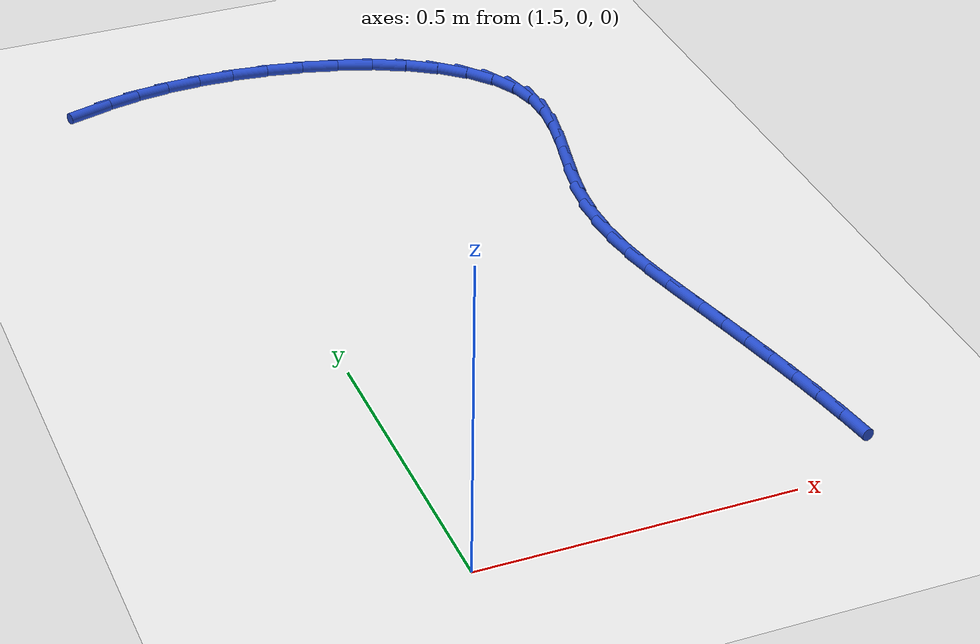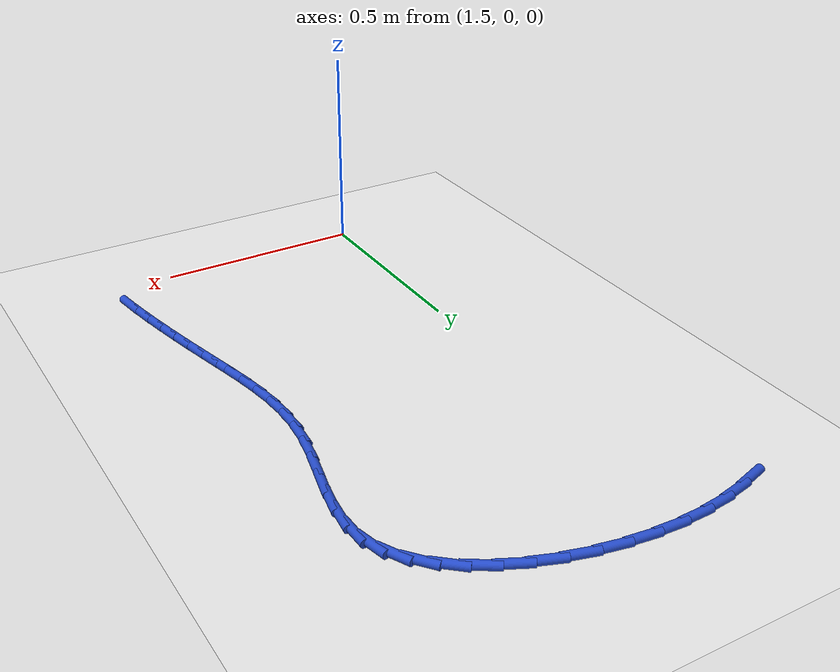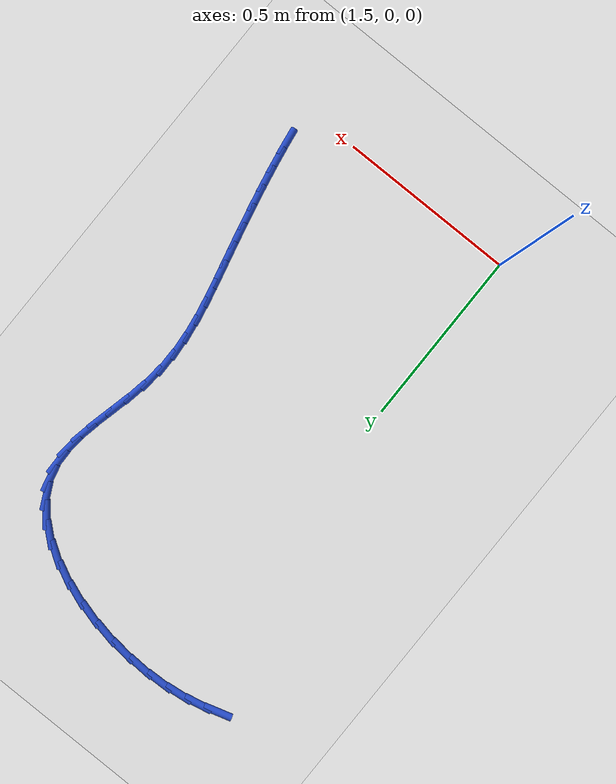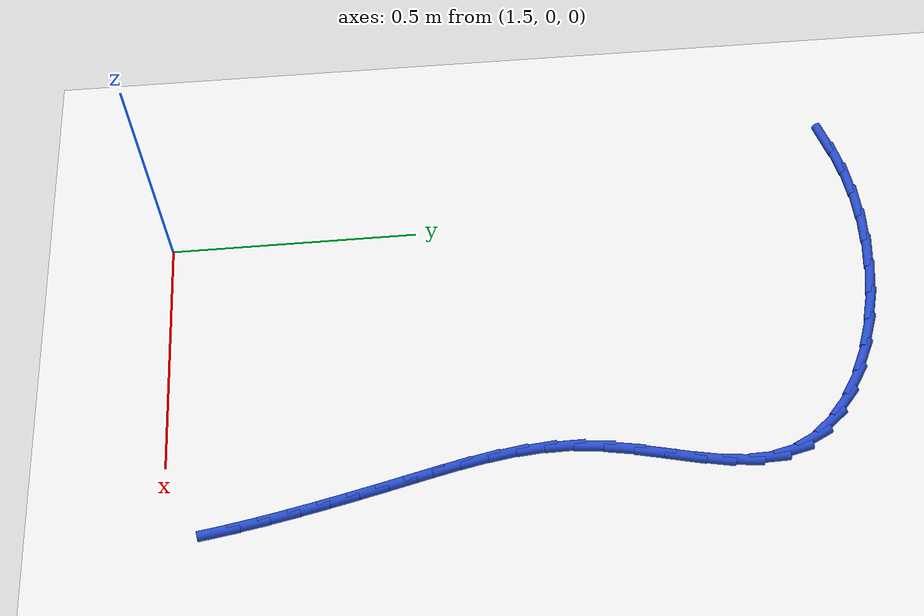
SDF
<sdf version="1.6">
 <world name="default">
  <model name="ground_plane">
   <static>1</static>
   <link name="link">
    <collision name="collision">
     <geometry><plane><normal>0 0 1</normal><size>100 100</size></plane></geometry>
     <surface><friction><ode><mu>100</mu><mu2>50</mu2></ode></friction></surface>
    </collision>
    <visual name="visual">
     <cast_shadows>0</cast_shadows>
     <geometry><plane><normal>0 0 1</normal><size>100 100</size></plane></geometry>
     <material>
      <script><uri>file://media/materials/scripts/gazebo.material</uri><name>Gazebo/WhiteGlow</name></script>
     </material>
    </visual>
   </link>
  </model>
  <model name="line">
   <link name="link_37">
    <pose>1.3368166220188906 1.3895947322920867 0.01 0 1.57 0.2828429320358755</pose>
    <collision name="collision">
     <geometry><cylinder><radius>0.01</radius><length>0.08</length></cylinder></geometry>
    </collision>
    <visual name="visual">
     <material>
      <script><name>Gazebo/Blue</name><uri>file://media/materials/scripts/gazebo.material</uri></script>
     </material>
     <geometry><cylinder><radius>0.01</radius><length>0.08</length></cylinder></geometry>
    </visual>
   </link>
   <link name="link_38">
    <pose>1.3908448251860674 1.4052972115189075 0.01 0 1.57 0.19849986727554278</pose>
    <collision name="collision">
     <geometry><cylinder><radius>0.01</radius><length>0.08</length></cylinder></geometry>
    </collision>
    <visual name="visual">
     <material>
      <script><name>Gazebo/Blue</name><uri>file://media/materials/scripts/gazebo.material</uri></script>
     </material>
     <geometry><cylinder><radius>0.01</radius><length>0.08</length></cylinder></geometry>
    </visual>
   </link>
   <link name="link_39">
    <pose>1.4475605045876268 1.4167054986228504 0.01 0 1.57 0.1108463671033673</pose>
    <collision name="collision">
     <geometry><cylinder><radius>0.01</radius><length>0.08</length></cylinder></geometry>
    </collision>
    <visual name="visual">
     <material>
      <script><name>Gazebo/Blue</name><uri>file://media/materials/scripts/gazebo.material</uri></script>
     </material>
     <geometry><cylinder><radius>0.01</radius><length>0.08</length></cylinder></geometry>
    </visual>
   </link>
   <link name="link_40">
    <pose>1.5072309692489756 1.4233469762562436 0.01 0 1.57 0.0261838454709441</pose>
    <collision name="collision">
     <geometry><cylinder><radius>0.01</radius><length>0.08</length></cylinder></geometry>
    </collision>
    <visual name="visual">
     <material>
      <script><name>Gazebo/Blue</name><uri>file://media/materials/scripts/gazebo.material</uri></script>
     </material>
     <geometry><cylinder><radius>0.01</radius><length>0.08</length></cylinder></geometry>
    </visual>
   </link>
   <link name="link_41">
    <pose>1.5695284566508951 1.424978536919252 0.01 0 1.57 -0.05167879565938909</pose>
    <collision name="collision">
     <geometry><cylinder><radius>0.01</radius><length>0.08</length></cylinder></geometry>
    </collision>
    <visual name="visual">
     <material>
      <script><name>Gazebo/Blue</name><uri>file://media/materials/scripts/gazebo.material</uri></script>
     </material>
     <geometry><cylinder><radius>0.01</radius><length>0.08</length></cylinder></geometry>
    </visual>
   </link>
   <link name="link_42">
    <pose>1.633286160712012 1.421680679175907 0.01 0 1.57 -0.12626106900351702</pose>
    <collision name="collision">
     <geometry><cylinder><radius>0.01</radius><length>0.08</length></cylinder></geometry>
    </collision>
    <visual name="visual">
     <material>
      <script><name>Gazebo/Blue</name><uri>file://media/materials/scripts/gazebo.material</uri></script>
     </material>
     <geometry><cylinder><radius>0.01</radius><length>0.08</length></cylinder></geometry>
    </visual>
   </link>
   <link name="link_43">
    <pose>1.6972740294257007 1.413558294560819 0.01 0 1.57 -0.20112399219696214</pose>
    <collision name="collision">
     <geometry><cylinder><radius>0.01</radius><length>0.08</length></cylinder></geometry>
    </collision>
    <visual name="visual">
     <material>
      <script><name>Gazebo/Blue</name><uri>file://media/materials/scripts/gazebo.material</uri></script>
     </material>
     <geometry><cylinder><radius>0.01</radius><length>0.08</length></cylinder></geometry>
    </visual>
   </link>
   <link name="link_44">
    <pose>1.7602620107853362 1.400716274608599 0.01 0 1.57 -0.27977995549784024</pose>
    <collision name="collision">
     <geometry><cylinder><radius>0.01</radius><length>0.08</length></cylinder></geometry>
    </collision>
    <visual name="visual">
     <material>
      <script><name>Gazebo/Blue</name><uri>file://media/materials/scripts/gazebo.material</uri></script>
     </material>
     <geometry><cylinder><radius>0.01</radius><length>0.08</length></cylinder></geometry>
    </visual>
   </link>
   <link name="link_45">
    <pose>1.821020052784292 1.3832595108538595 0.01 0 1.57 -0.36609247645813225</pose>
    <collision name="collision">
     <geometry><cylinder><radius>0.01</radius><length>0.08</length></cylinder></geometry>
    </collision>
    <visual name="visual">
     <material>
      <script><name>Gazebo/Blue</name><uri>file://media/materials/scripts/gazebo.material</uri></script>
     </material>
     <geometry><cylinder><radius>0.01</radius><length>0.08</length></cylinder></geometry>
    </visual>
   </link>
   <link name="link_46">
    <pose>1.8783181034159422 1.3612928948312102 0.01 0 1.57 -0.46467465270113656</pose>
    <collision name="collision">
     <geometry><cylinder><radius>0.01</radius><length>0.08</length></cylinder></geometry>
    </collision>
    <visual name="visual">
     <material>
      <script><name>Gazebo/Blue</name><uri>file://media/materials/scripts/gazebo.material</uri></script>
     </material>
     <geometry><cylinder><radius>0.01</radius><length>0.08</length></cylinder></geometry>
    </visual>
   </link>
   <link name="link_47">
    <pose>1.9309261106736613 1.334921318075263 0.01 0 1.57 -0.5812458126008342</pose>
    <collision name="collision">
     <geometry><cylinder><radius>0.01</radius><length>0.08</length></cylinder></geometry>
    </collision>
    <visual name="visual">
     <material>
      <script><name>Gazebo/Blue</name><uri>file://media/materials/scripts/gazebo.material</uri></script>
     </material>
     <geometry><cylinder><radius>0.01</radius><length>0.08</length></cylinder></geometry>
    </visual>
   </link>
   <link name="link_48">
    <pose>1.9776140225508234 1.304249672120629 0.01 0 1.57 -0.7227028463644833</pose>
    <collision name="collision">
     <geometry><cylinder><radius>0.01</radius><length>0.08</length></cylinder></geometry>
    </collision>
    <visual name="visual">
     <material>
      <script><name>Gazebo/Blue</name><uri>file://media/materials/scripts/gazebo.material</uri></script>
     </material>
     <geometry><cylinder><radius>0.01</radius><length>0.08</length></cylinder></geometry>
    </visual>
   </link>
   <link name="link_49">
    <pose>2.017151787040802 1.2693828485019187 0.01 0 1.57 -0.8961825339185785</pose>
    <collision name="collision">
     <geometry><cylinder><radius>0.01</radius><length>0.08</length></cylinder></geometry>
    </collision>
    <visual name="visual">
     <material>
      <script><name>Gazebo/Blue</name><uri>file://media/materials/scripts/gazebo.material</uri></script>
     </material>
     <geometry><cylinder><radius>0.01</radius><length>0.08</length></cylinder></geometry>
    </visual>
   </link>
   <link name="link_50">
    <pose>2.0483093521369726 1.230425738753744 0.01 0 1.57 -1.1057327291660544</pose>
    <collision name="collision">
     <geometry><cylinder><radius>0.01</radius><length>0.08</length></cylinder></geometry>
    </collision>
    <visual name="visual">
     <material>
      <script><name>Gazebo/Blue</name><uri>file://media/materials/scripts/gazebo.material</uri></script>
     </material>
     <geometry><cylinder><radius>0.01</radius><length>0.08</length></cylinder></geometry>
    </visual>
   </link>
   <link name="link_51">
    <pose>2.0698566658327096 1.1874832344107165 0.01 0 1.57 -1.3435146574158854</pose>
    <collision name="collision">
     <geometry><cylinder><radius>0.01</radius><length>0.08</length></cylinder></geometry>
    </collision>
    <visual name="visual">
     <material>
      <script><name>Gazebo/Blue</name><uri>file://media/materials/scripts/gazebo.material</uri></script>
     </material>
     <geometry><cylinder><radius>0.01</radius><length>0.08</length></cylinder></geometry>
    </visual>
   </link>
   <link name="link_52">
    <pose>2.0806813681542025 1.1406793417318133 0.01 0 1.57 -1.5513893565116859</pose>
    <collision name="collision">
     <geometry><cylinder><radius>0.01</radius><length>0.08</length></cylinder></geometry>
    </collision>
    <visual name="visual">
     <material>
      <script><name>Gazebo/Blue</name><uri>file://media/materials/scripts/gazebo.material</uri></script>
     </material>
     <geometry><cylinder><radius>0.01</radius><length>0.08</length></cylinder></geometry>
    </visual>
   </link>
   <link name="link_53">
    <pose>2.081656086970403 1.0904604549455121 0.01 0 1.57 1.4513495011183806</pose>
    <collision name="collision">
     <geometry><cylinder><radius>0.01</radius><length>0.08</length></cylinder></geometry>
    </collision>
    <visual name="visual">
     <material>
      <script><name>Gazebo/Blue</name><uri>file://media/materials/scripts/gazebo.material</uri></script>
     </material>
     <geometry><cylinder><radius>0.01</radius><length>0.08</length></cylinder></geometry>
    </visual>
   </link>
   <link name="link_54">
    <pose>2.0753048120213493 1.0375411710314912 0.01 0 1.57 1.3712361652999832</pose>
    <collision name="collision">
     <geometry><cylinder><radius>0.01</radius><length>0.08</length></cylinder></geometry>
    </collision>
    <visual name="visual">
     <material>
      <script><name>Gazebo/Blue</name><uri>file://media/materials/scripts/gazebo.material</uri></script>
     </material>
     <geometry><cylinder><radius>0.01</radius><length>0.08</length></cylinder></geometry>
    </visual>
   </link>
   <link name="link_55">
    <pose>2.064201790829728 0.9826442494902003 0.01 0 1.57 1.3385528996247775</pose>
    <collision name="collision">
     <geometry><cylinder><radius>0.01</radius><length>0.08</length></cylinder></geometry>
    </collision>
    <visual name="visual">
     <material>
      <script><name>Gazebo/Blue</name><uri>file://media/materials/scripts/gazebo.material</uri></script>
     </material>
     <geometry><cylinder><radius>0.01</radius><length>0.08</length></cylinder></geometry>
    </visual>
   </link>
   <link name="link_56">
    <pose>2.0509212709182285 0.9264924498220918 0.01 0 1.57 1.3473019036630338</pose>
    <collision name="collision">
     <geometry><cylinder><radius>0.01</radius><length>0.08</length></cylinder></geometry>
    </collision>
    <visual name="visual">
     <material>
      <script><name>Gazebo/Blue</name><uri>file://media/materials/scripts/gazebo.material</uri></script>
     </material>
     <geometry><cylinder><radius>0.01</radius><length>0.08</length></cylinder></geometry>
    </visual>
   </link>
   <link name="link_57">
    <pose>2.03803749980954 0.8698085315276156 0.01 0 1.57 1.3970963904570313</pose>
    <collision name="collision">
     <geometry><cylinder><radius>0.01</radius><length>0.08</length></cylinder></geometry>
    </collision>
    <visual name="visual">
     <material>
      <script><name>Gazebo/Blue</name><uri>file://media/materials/scripts/gazebo.material</uri></script>
     </material>
     <geometry><cylinder><radius>0.01</radius><length>0.08</length></cylinder></geometry>
    </visual>
   </link>
   <link name="link_58">
    <pose>2.02812472502635 0.8133152541072233 0.01 0 1.57 1.4874098616076596</pose>
    <collision name="collision">
     <geometry><cylinder><radius>0.01</radius><length>0.08</length></cylinder></geometry>
    </collision>
    <visual name="visual">
     <material>
      <script><name>Gazebo/Blue</name><uri>file://media/materials/scripts/gazebo.material</uri></script>
     </material>
     <geometry><cylinder><radius>0.01</radius><length>0.08</length></cylinder></geometry>
    </visual>
   </link>
   <link name="link_59">
    <pose>2.0234729349099743 0.7576586995734699 0.01 0 1.57 -1.5582166364108032</pose>
    <collision name="collision">
     <geometry><cylinder><radius>0.01</radius><length>0.08</length></cylinder></geometry>
    </collision>
    <visual name="visual">
     <material>
      <script><name>Gazebo/Blue</name><uri>file://media/materials/scripts/gazebo.material</uri></script>
     </material>
     <geometry><cylinder><radius>0.01</radius><length>0.08</length></cylinder></geometry>
    </visual>
   </link>
   <link name="link_60">
    <pose>2.024161960000409 0.7028887709615537 0.01 0 1.57 -1.4772908455565932</pose>
    <collision name="collision">
     <geometry><cylinder><radius>0.01</radius><length>0.08</length></cylinder></geometry>
    </collision>
    <visual name="visual">
     <material>
      <script><name>Gazebo/Blue</name><uri>file://media/materials/scripts/gazebo.material</uri></script>
     </material>
     <geometry><cylinder><radius>0.01</radius><length>0.08</length></cylinder></geometry>
    </visual>
   </link>
   <link name="link_61">
    <pose>2.029236582815146 0.6487761722959905 0.01 0 1.57 -1.4137887165731706</pose>
    <collision name="collision">
     <geometry><cylinder><radius>0.01</radius><length>0.08</length></cylinder></geometry>
    </collision>
    <visual name="visual">
     <material>
      <script><name>Gazebo/Blue</name><uri>file://media/materials/scripts/gazebo.material</uri></script>
     </material>
     <geometry><cylinder><radius>0.01</radius><length>0.08</length></cylinder></geometry>
    </visual>
   </link>
   <link name="link_62">
    <pose>2.0377356716632056 0.5950900122732382 0.01 0 1.57 -1.368654287643341</pose>
    <collision name="collision">
     <geometry><cylinder><radius>0.01</radius><length>0.08</length></cylinder></geometry>
    </collision>
    <visual name="visual">
     <material>
      <script><name>Gazebo/Blue</name><uri>file://media/materials/scripts/gazebo.material</uri></script>
     </material>
     <geometry><cylinder><radius>0.01</radius><length>0.08</length></cylinder></geometry>
    </visual>
   </link>
   <link name="link_63">
    <pose>2.048698094853611 0.5415993995897533 0.01 0 1.57 -1.3420032048558117</pose>
    <collision name="collision">
     <geometry><cylinder><radius>0.01</radius><length>0.08</length></cylinder></geometry>
    </collision>
    <visual name="visual">
     <material>
      <script><name>Gazebo/Blue</name><uri>file://media/materials/scripts/gazebo.material</uri></script>
     </material>
     <geometry><cylinder><radius>0.01</radius><length>0.08</length></cylinder></geometry>
    </visual>
   </link>
   <link name="link_64">
    <pose>2.061162720695383 0.48807344294199345 0.01 0 1.57 -1.3334816626162314</pose>
    <collision name="collision">
     <geometry><cylinder><radius>0.01</radius><length>0.08</length></cylinder></geometry>
    </collision>
    <visual name="visual">
     <material>
      <script><name>Gazebo/Blue</name><uri>file://media/materials/scripts/gazebo.material</uri></script>
     </material>
     <geometry><cylinder><radius>0.01</radius><length>0.08</length></cylinder></geometry>
    </visual>
   </link>
   <link name="link_65">
    <pose>2.0741731527582066 0.4342829679388892 0.01 0 1.57 -1.3371949440755309</pose>
    <collision name="collision">
     <geometry><cylinder><radius>0.01</radius><length>0.08</length></cylinder></geometry>
    </collision>
    <visual name="visual">
     <material>
      <script><name>Gazebo/Blue</name><uri>file://media/materials/scripts/gazebo.material</uri></script>
     </material>
     <geometry><cylinder><radius>0.01</radius><length>0.08</length></cylinder></geometry>
    </visual>
   </link>
   <link name="link_66">
    <pose>2.087064658055217 0.38010455162307283 0.01 0 1.57 -1.344314531034148</pose>
    <collision name="collision">
     <geometry><cylinder><radius>0.01</radius><length>0.08</length></cylinder></geometry>
    </collision>
    <visual name="visual">
     <material>
      <script><name>Gazebo/Blue</name><uri>file://media/materials/scripts/gazebo.material</uri></script>
     </material>
     <geometry><cylinder><radius>0.01</radius><length>0.08</length></cylinder></geometry>
    </visual>
   </link>
   <link name="link_67">
    <pose>2.0996289761751052 0.32558027902385106 0.01 0 1.57 -1.3540779481448386</pose>
    <collision name="collision">
     <geometry><cylinder><radius>0.01</radius><length>0.08</length></cylinder></geometry>
    </collision>
    <visual name="visual">
     <material>
      <script><name>Gazebo/Blue</name><uri>file://media/materials/scripts/gazebo.material</uri></script>
     </material>
     <geometry><cylinder><radius>0.01</radius><length>0.08</length></cylinder></geometry>
    </visual>
   </link>
   <link name="link_68">
    <pose>2.1116976312793576 0.2707666602748963 0.01 0 1.57 -1.3665066931675545</pose>
    <collision name="collision">
     <geometry><cylinder><radius>0.01</radius><length>0.08</length></cylinder></geometry>
    </collision>
    <visual name="visual">
     <material>
      <script><name>Gazebo/Blue</name><uri>file://media/materials/scripts/gazebo.material</uri></script>
     </material>
     <geometry><cylinder><radius>0.01</radius><length>0.08</length></cylinder></geometry>
    </visual>
   </link>
   <link name="link_69">
    <pose>2.1231021475294587 0.21572020550988305 0.01 0 1.57 -1.3816440049832164</pose>
    <collision name="collision">
     <geometry><cylinder><radius>0.01</radius><length>0.08</length></cylinder></geometry>
    </collision>
    <visual name="visual">
     <material>
      <script><name>Gazebo/Blue</name><uri>file://media/materials/scripts/gazebo.material</uri></script>
     </material>
     <geometry><cylinder><radius>0.01</radius><length>0.08</length></cylinder></geometry>
    </visual>
   </link>
   <link name="link_70">
    <pose>2.133674049086892 0.16049742486248364 0.01 0 1.57 -1.3995525582503328</pose>
    <collision name="collision">
     <geometry><cylinder><radius>0.01</radius><length>0.08</length></cylinder></geometry>
    </collision>
    <visual name="visual">
     <material>
      <script><name>Gazebo/Blue</name><uri>file://media/materials/scripts/gazebo.material</uri></script>
     </material>
     <geometry><cylinder><radius>0.01</radius><length>0.08</length></cylinder></geometry>
    </visual>
   </link>
   <link name="link_71">
    <pose>2.143244860113144 0.10515482846637245 0.01 0 1.57 -1.4203117874224251</pose>
    <collision name="collision">
     <geometry><cylinder><radius>0.01</radius><length>0.08</length></cylinder></geometry>
    </collision>
    <visual name="visual">
     <material>
      <script><name>Gazebo/Blue</name><uri>file://media/materials/scripts/gazebo.material</uri></script>
     </material>
     <geometry><cylinder><radius>0.01</radius><length>0.08</length></cylinder></geometry>
    </visual>
   </link>
  </model>
 </world>
</sdf>
